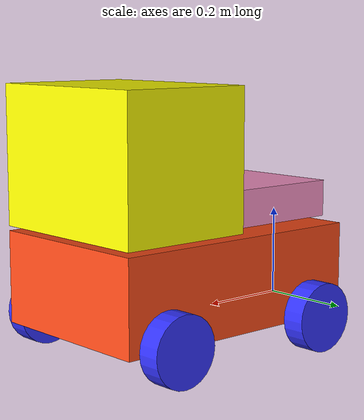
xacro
<?xml version="1.0"?>
<robot xmlns:xacro="http://www.ros.org/wiki/xacro">

    <xacro:include filename="inertial_macros.xacro" />

    <xacro:property name="chassis_length" value="0.60" />
    <xacro:property name="chassis_width" value="0.40" />
    <xacro:property name="chassis_height" value="0.20" />
    <xacro:property name="chassis_mass" value="1.0" />
    <xacro:property name="wheel_radius" value="0.075" />
    <xacro:property name="wheel_thickness" value="0.05" />
    <xacro:property name="wheel_mass" value="0.05" />
    <xacro:property name="wheel_offset_x" value="0.5" />
    <xacro:property name="wheel_offset_y" value="0.225" />
    <xacro:property name="wheel_offset_z" value="0.01" />
    <xacro:property name="platform_length" value="0.3" />
    <xacro:property name="platform_width" value="0.3" />
    <xacro:property name="platform_height" value="0.08" />
    <xacro:property name="body_length" value="0.3" />
    <xacro:property name="body_width" value="0.4" />
    <xacro:property name="body_height" value="0.3" />

    <material name="white">
        <color rgba="1 1 1 1" />
    </material>

    <material name="orange">
        <color rgba="1 0.3 0.1 1" />
    </material>

    <material name="blue">
        <color rgba="0.2 0.2 1 1" />
    </material>

    <material name="black">
        <color rgba="0 0 0 1" />
    </material>

    <material name="red">
        <color rgba="1 0 0 1" />
    </material>

    <material name="green">
        <color rgba="0 1 0 1" />
    </material>

    <material name="yellow">
        <color rgba="1 1 0 1" />
    </material>

    <material name="purple">
        <color rgba="0.5 0 0.5 1" />
    </material>

    <material name="cyan">
        <color rgba="0 1 1 1" />
    </material>

    <material name="magenta">
        <color rgba="1 0 1 1" />
    </material>

    <material name="gray">
        <color rgba="0.5 0.5 0.5 1" />
    </material>

    <material name="dark_gray">
        <color rgba="0.25 0.25 0.25 1" />
    </material>

    <material name="light_gray">
        <color rgba="0.75 0.75 0.75 1" />
    </material>

    <material name="brown">
        <color rgba="0.6 0.3 0.1 1" />
    </material>

    <material name="light_blue">
        <color rgba="0.5 0.7 1 1" />
    </material>

    <material name="lime">
        <color rgba="0.7 1 0 1" />
    </material>

    <material name="pink">
        <color rgba="1 0.6 0.8 1" />
    </material>

    <material name="teal">
        <color rgba="0 0.5 0.5 1" />
    </material>

    <material name="navy">
        <color rgba="0 0 0.5 1" />
    </material>

    <!-- BASE LINK -->

    <link name="base_link">

    </link>

    <!-- BASE_FOOTPRINT LINK -->

    <joint name="base_footprint_joint" type="fixed">
        <parent link="base_link" />
        <child link="base_footprint" />
        <origin xyz="0 0 0" rpy="0 0 0" />
    </joint>

    <link name="base_footprint">
    </link>

    <!-- CHASSIS LINK -->

    <joint name="chassis_joint" type="fixed">
        <parent link="base_link" />
        <child link="chassis" />
        <origin xyz="0 0 ${-wheel_offset_z}" />
    </joint>

    <link name="chassis">
        <visual>
            <origin xyz="${chassis_length/2} 0 ${chassis_height/2}" />
            <geometry>
                <box size="${chassis_length} ${chassis_width} ${chassis_height}" />
            </geometry>
            <material name="orange" />
        </visual>
        <collision>
            <origin xyz="${chassis_length/2} 0 ${chassis_height/2}" />
            <geometry>
                <box size="${chassis_length} ${chassis_width} ${chassis_height}" />
            </geometry>
        </collision>
        <xacro:inertial_box mass="0.5" x="${chassis_length}" y="${chassis_width}"
            z="${chassis_height}">
            <origin xyz="${chassis_length/2} 0 ${chassis_height/2}" rpy="0 0 0" />
        </xacro:inertial_box>
    </link>

    <gazebo reference="chassis">
        <material>Gazebo/Orange</material>
    </gazebo>

    <!-- LEFT WHEEL LINK -->

    <joint name="front_left_wheel_joint" type="continuous">
        <parent link="base_link" />
        <child link="front_left_wheel" />
        <origin xyz="${wheel_offset_x}  ${wheel_offset_y} 0" rpy="-${pi/2} 0 0" />
        <axis xyz="0 0 1" />
    </joint>

    <link name="front_left_wheel">
        <visual>
            <geometry>
                <cylinder radius="${wheel_radius}" length="${wheel_thickness}" />
            </geometry>
            <material name="blue" />
        </visual>
        <collision>
            <geometry>
                <sphere radius="${wheel_radius}" />
            </geometry>
        </collision>
        <xacro:inertial_cylinder mass="${wheel_mass}" length="${wheel_thickness}"
            radius="${wheel_radius}">
            <origin xyz="0 0 0" rpy="0 0 0" />
        </xacro:inertial_cylinder>
    </link>

    <gazebo reference="front_left_wheel">
        <material>Gazebo/Blue</material>
        <mu1>0.9</mu1>
        <mu2>0.9</mu2>
        <slip1>0.0</slip1>
        <slip2>0.0</slip2>
    </gazebo>

    <joint name="rear_left_wheel_joint" type="continuous">
        <parent link="base_link" />
        <child link="rear_left_wheel" />
        <origin xyz="${wheel_offset_x-0.4} ${wheel_offset_y} 0" rpy="-${pi/2} 0 0" />
        <axis xyz="0 0 1" />
    </joint>

    <link name="rear_left_wheel">
        <visual>
            <geometry>
                <cylinder radius="${wheel_radius}" length="${wheel_thickness}" />
            </geometry>
            <material name="blue" />
        </visual>
        <collision>
            <geometry>
                <sphere radius="${wheel_radius}" />
            </geometry>
        </collision>
        <xacro:inertial_cylinder mass="${wheel_mass}" length="${wheel_thickness}"
            radius="${wheel_radius}">
            <origin xyz="0 0 0" rpy="0 0 0" />
        </xacro:inertial_cylinder>
    </link>

    <gazebo reference="rear_left_wheel">
        <material>Gazebo/Blue</material>
        <mu1>0.9</mu1>
        <mu2>0.9</mu2>
        <slip1>0.0</slip1>
        <slip2>0.0</slip2>
    </gazebo>

    <!-- RIGHT WHEEL LINK -->

    <joint name="front_right_wheel_joint" type="continuous">
        <parent link="base_link" />
        <child link="front_right_wheel" />
        <origin xyz="${wheel_offset_x} ${-wheel_offset_y} 0" rpy="${pi/2} 0 0" />
        <axis xyz="0 0 1" />
    </joint>

    <link name="front_right_wheel">
        <visual>
            <geometry>
                <cylinder radius="${wheel_radius}" length="${wheel_thickness}" />
            </geometry>
            <material name="blue" />
        </visual>
        <collision>
            <geometry>
                <sphere radius="${wheel_radius}" />
            </geometry>
        </collision>
        <xacro:inertial_cylinder mass="${wheel_mass}" length="${wheel_thickness}"
            radius="${wheel_radius}">
            <origin xyz="0 0 0" rpy="0 0 0" />
        </xacro:inertial_cylinder>
    </link>

    <gazebo reference="front_right_wheel">
        <material>Gazebo/Blue</material>
        <mu1>0.9</mu1>
        <mu2>0.9</mu2>
        <slip1>0.0</slip1>
        <slip2>0.0</slip2>
    </gazebo>

    <joint name="rear_right_wheel_joint" type="continuous">
        <parent link="base_link" />
        <child link="rear_right_wheel" />
        <origin xyz="${wheel_offset_x-0.4} ${-wheel_offset_y} 0" rpy="${pi/2} 0 0" />
        <axis xyz="0 0 1" />
    </joint>

    <link name="rear_right_wheel">
        <visual>
            <geometry>
                <cylinder radius="${wheel_radius}" length="${wheel_thickness}" />
            </geometry>
            <material name="blue" />
        </visual>
        <collision>
            <geometry>
                <sphere radius="${wheel_radius}" />
            </geometry>
        </collision>
        <xacro:inertial_cylinder mass="${wheel_mass}" length="${wheel_thickness}"
            radius="${wheel_radius}">
            <origin xyz="0 0 0" rpy="0 0 0" />
        </xacro:inertial_cylinder>
    </link>

    <gazebo reference="rear_right_wheel">
        <material>Gazebo/Blue</material>
        <mu1>0.9</mu1>
        <mu2>0.9</mu2>
        <slip1>0.0</slip1>
        <slip2>0.0</slip2>
    </gazebo>

    <!-- PL,ATFORM LINK -->

    <joint name="platform_joint" type="fixed">
        <parent link="base_link" />
        <child link="platform" />
        <origin xyz="0 0 ${(chassis_height)}" />
    </joint>

    <link name="platform">
        <visual>
            <origin xyz="${platform_length/2} 0 ${platform_height/2}" />
            <geometry>
                <box size="${platform_length} ${platform_width} ${platform_height}" />
            </geometry>
            <material name="pink" />
        </visual>
        <collision>
            <origin xyz="${platform_length/2} 0 ${platform_height/2}" />
            <geometry>
                <box size="${platform_length} ${platform_width} ${platform_height}" />
            </geometry>
        </collision>
        <xacro:inertial_box mass="0.5" x="${platform_length}" y="${platform_width}"
            z="${platform_height}">
            <origin xyz="${platform_length/2} 0 ${platform_height/2}" rpy="0 0 0" />
        </xacro:inertial_box>
    </link>

    <!-- BODY LINK -->

    <joint name="body_joint" type="fixed">
        <parent link="base_link" />
        <child link="body" />
        <origin xyz="0.3 0 ${(chassis_height)}" />
    </joint>

    <link name="body">
        <visual>
            <origin xyz="${body_length/2} 0 ${body_height/2}" />
            <geometry>
                <box size="${body_length} ${body_width} ${body_height}" />
            </geometry>
            <material name="yellow" />
        </visual>
        <collision>
            <origin xyz="${body_length/2} 0 ${body_height/2}" />
            <geometry>
                <box size="${body_length} ${body_width} ${body_height}" />
            </geometry>
        </collision>
        <xacro:inertial_box mass="0.5" x="${body_length}" y="${body_width}" z="${body_height}">
            <origin xyz="${body_length/2} 0 ${body_height/2}" rpy="0 0 0" />
        </xacro:inertial_box>
    </link>
    <gazebo reference="platform">
        <material>Gazebo/Pink</material>
    </gazebo>

    <gazebo reference="body">
        <material>Gazebo/Yellow</material>
    </gazebo>

    <gazebo>
        <plugin filename="gz-sim-diff-drive-system" name="gz::sim::systems::DiffDrive">
            <topic>cmd_vel</topic>
            <child_frame_id>base_footprint</child_frame_id>
            <odom_topic>odom</odom_topic>
            <left_joint>front_left_wheel_joint</left_joint>
            <right_joint>front_right_wheel_joint</right_joint>
            <left_joint>rear_left_wheel_joint</left_joint>
            <right_joint>rear_right_wheel_joint</right_joint>
            <wheel_separation>${2 * wheel_offset_y}</wheel_separation>
            <wheel_radius>${wheel_radius}</wheel_radius>
            <max_linear_acceleration>1</max_linear_acceleration>
            <min_linear_acceleration>-1</min_linear_acceleration>
            <max_angular_acceleration>2</max_angular_acceleration>
            <min_angular_acceleration>-2</min_angular_acceleration>
            <max_linear_velocity>0.5</max_linear_velocity>
            <min_linear_velocity>-0.5</min_linear_velocity>
            <max_angular_velocity>1</max_angular_velocity>
            <min_angular_velocity>-1</min_angular_velocity>
        </plugin>
    </gazebo>

    <gazebo>
        <plugin filename="gz-sim-joint-state-publisher-system"
            name="gz::sim::systems::JointStatePublisher">
            <topic>joint_states</topic>
            <update_rate>50</update_rate>
            <joint_name>front_left_wheel_joint</joint_name>
            <joint_name>front_right_wheel_joint</joint_name>
            <joint_name>rear_left_wheel_joint</joint_name>
            <joint_name>rear_right_wheel_joint</joint_name>
        </plugin>
    </gazebo>

</robot>
